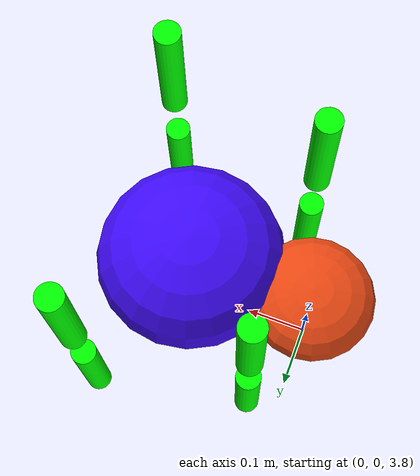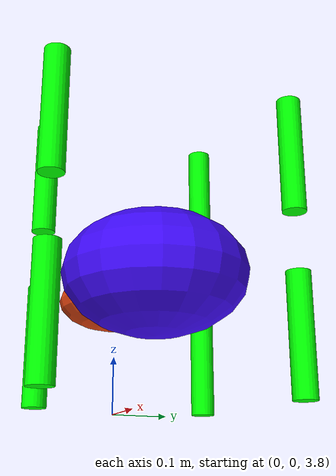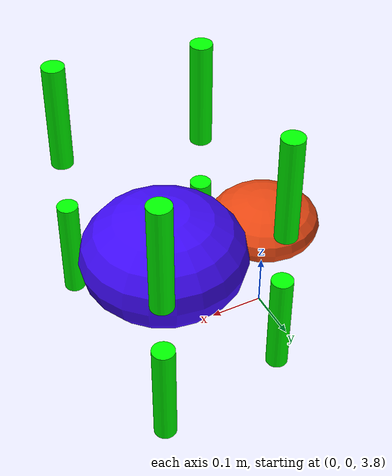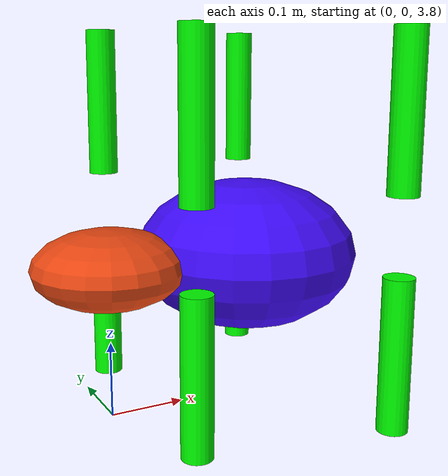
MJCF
<mujoco model="unnamed_model">
  <option timestep="0.01"/>
  <visual>
    <headlight ambient="0.5 0.5 0.5"/>
  </visual>
  <default>
    <default class="/"/>
  </default>
  <worldbody>
    <light name="//unnamed_light_0" class="/" pos="0 0 3" dir="0 0 -1" diffuse="0.5 0.5 0.5"/>
    <geom name="//unnamed_geom_0" class="/" type="plane" size="50 50 0.10000000000000001"/>
    <body name="//unnamed_body_0" pos="0 0 4">
      <joint name="//unnamed_joint_0" class="/" type="free"/>
      <geom name="//unnamed_geom_1" class="/" type="ellipsoid" size="0.10000000000000001 0.10000000000000001 0.050000000000000003" rgba="0.91000000000000003 0.27800000000000002 0.070999999999999994 1" pos="0 0 0"/>
      <geom name="//unnamed_geom_2" class="/" type="ellipsoid" size="0.14999999999999999 0.14999999999999999 0.10000000000000001" rgba="0.247 0.035000000000000003 0.97999999999999998 1" pos="0.20000000000000001 0 0"/>
      <body name="limb1" pos="0.050000000000000003 0.14999999999999999 -0.10000000000000001">
        <geom name="//unnamed_geom_3" class="/" type="cylinder" size="0.02 0.10000000000000001" rgba="0 1 0 1"/>
        <joint name="limb1_joint" class="/" type="hinge" pos="0 0 0.10000000000000001" axis="0 1 0" range="-45 45"/>
      </body>
      <body name="limb2" pos="0.050000000000000003 -0.14999999999999999 -0.10000000000000001">
        <geom name="//unnamed_geom_4" class="/" type="cylinder" size="0.02 0.10000000000000001" rgba="0 1 0 1"/>
        <joint name="limb2_joint" class="/" type="hinge" pos="0 0 0.10000000000000001" axis="0 1 0" range="-45 45"/>
      </body>
      <body name="limb3" pos="0.29999999999999999 0.20000000000000001 -0.10000000000000001">
        <geom name="//unnamed_geom_5" class="/" type="cylinder" size="0.02 0.10000000000000001" rgba="0 1 0 1"/>
        <joint name="limb3_joint" class="/" type="hinge" pos="0 0 0.10000000000000001" axis="0 1 0" range="-45 45"/>
      </body>
      <body name="limb4" pos="0.29999999999999999 -0.20000000000000001 -0.10000000000000001">
        <geom name="//unnamed_geom_6" class="/" type="cylinder" size="0.02 0.10000000000000001" rgba="0 1 0 1"/>
        <joint name="limb4_joint" class="/" type="hinge" pos="0 0 0.10000000000000001" axis="0 1 0" range="-45 45"/>
      </body>
      <body name="back_limb1" pos="0.050000000000000003 0.14999999999999999 0.20000000000000001">
        <geom name="//unnamed_geom_7" class="/" type="cylinder" size="0.02 0.10000000000000001" rgba="0 1 0 1"/>
        <joint name="back_limb1_joint" class="/" type="hinge" pos="0 0 -0.10000000000000001" axis="0 1 0" range="-45 45"/>
      </body>
      <body name="back_limb2" pos="0.050000000000000003 -0.14999999999999999 0.20000000000000001">
        <geom name="//unnamed_geom_8" class="/" type="cylinder" size="0.02 0.10000000000000001" rgba="0 1 0 1"/>
        <joint name="back_limb2_joint" class="/" type="hinge" pos="0 0 -0.10000000000000001" axis="0 1 0" range="-45 45"/>
      </body>
      <body name="back_limb3" pos="0.29999999999999999 0.20000000000000001 0.20000000000000001">
        <geom name="//unnamed_geom_9" class="/" type="cylinder" size="0.02 0.10000000000000001" rgba="0 1 0 1"/>
        <joint name="back_limb3_joint" class="/" type="hinge" pos="0 0 -0.10000000000000001" axis="0 1 0" range="-45 45"/>
      </body>
      <body name="back_limb4" pos="0.29999999999999999 -0.20000000000000001 0.20000000000000001">
        <geom name="//unnamed_geom_10" class="/" type="cylinder" size="0.02 0.10000000000000001" rgba="0 1 0 1"/>
        <joint name="back_limb4_joint" class="/" type="hinge" pos="0 0 -0.10000000000000001" axis="0 1 0" range="-45 45"/>
      </body>
    </body>
  </worldbody>
  <actuator>
    <motor name="motor_limb1_joint" class="/" ctrllimited="true" ctrlrange="-45 45" gear="1" joint="limb1_joint"/>
    <motor name="motor_limb2_joint" class="/" ctrllimited="true" ctrlrange="-45 45" gear="1" joint="limb2_joint"/>
    <motor name="motor_limb3_joint" class="/" ctrllimited="true" ctrlrange="-45 45" gear="1" joint="limb3_joint"/>
    <motor name="motor_limb4_joint" class="/" ctrllimited="true" ctrlrange="-45 45" gear="1" joint="limb4_joint"/>
    <motor name="motor_back_back_limb1_joint" class="/" ctrllimited="true" ctrlrange="-45 45" gear="1" joint="back_limb1_joint"/>
    <motor name="motor_back_back_limb2_joint" class="/" ctrllimited="true" ctrlrange="-45 45" gear="1" joint="back_limb2_joint"/>
    <motor name="motor_back_back_limb3_joint" class="/" ctrllimited="true" ctrlrange="-45 45" gear="1" joint="back_limb3_joint"/>
    <motor name="motor_back_back_limb4_joint" class="/" ctrllimited="true" ctrlrange="-45 45" gear="1" joint="back_limb4_joint"/>
  </actuator>
</mujoco>
